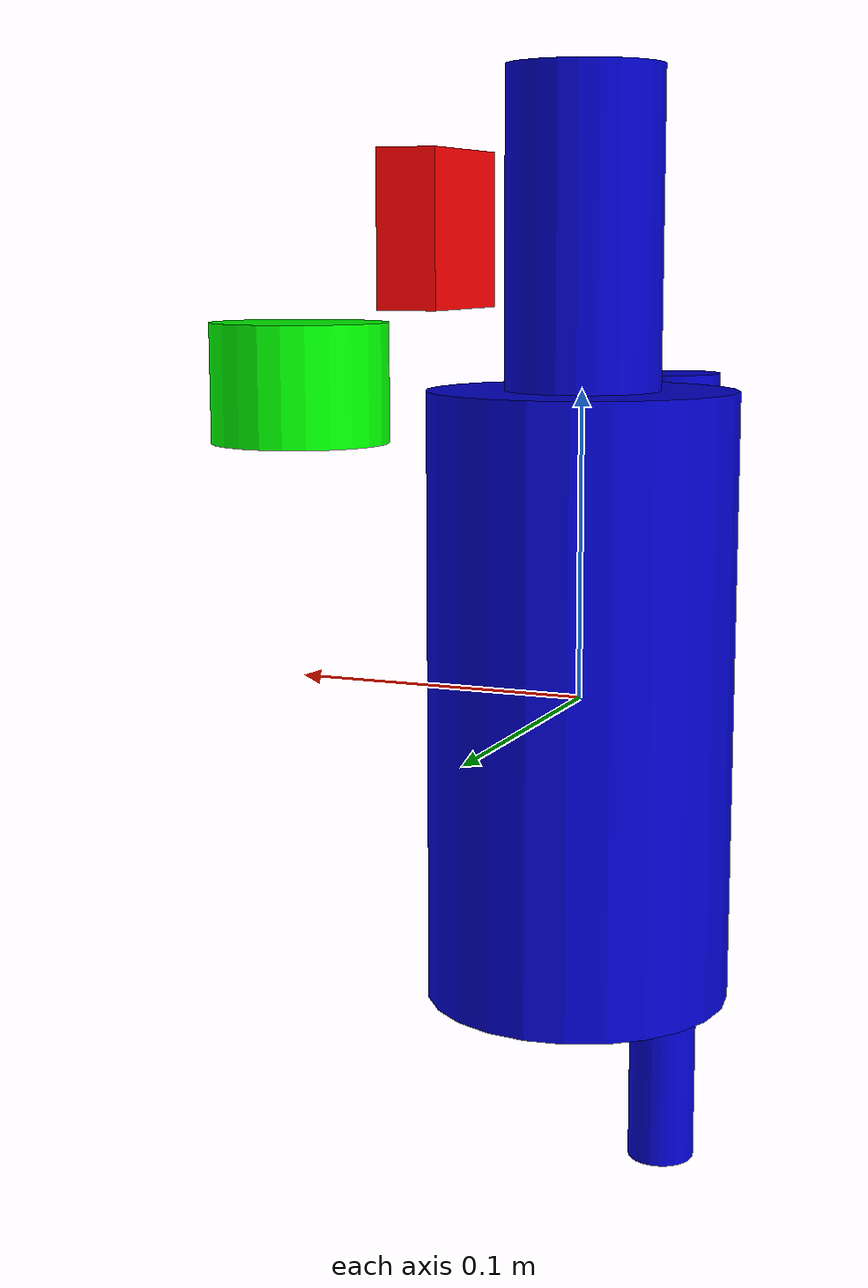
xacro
<?xml version="1.0"?>
<robot name="generic_humanoid" xmlns:xacro="http://www.ros.org/wiki/xacro">

  <!-- Define common properties/macros -->
  <xacro:property name="M_PI" value="3.1415926535897931" />
  <xacro:property name="body_mass" value="1.0" />
  <xacro:property name="body_len" value="0.2" />
  <xacro:property name="body_rad" value="0.05" />

  <!-- Macro for a generic cylinder link with inertia -->
  <xacro:macro name="cylinder_link" params="name mass length radius">
    <link name="${name}">
      <visual>
        <geometry>
          <cylinder length="${length}" radius="${radius}"/>
        </geometry>
        <material name="blue">
          <color rgba="0 0 0.8 1"/>
        </material>
      </visual>
      <collision>
        <geometry>
          <cylinder length="${length}" radius="${radius}"/>
        </geometry>
      </collision>
      <inertial>
        <mass value="${mass}"/>
        <inertia ixx="${(1/12)*mass*(3*radius*radius + length*length)}" ixy="0.0" ixz="0.0"
                 iyy="${(1/12)*mass*(3*radius*radius + length*length)}" iyz="0.0"
                 izz="${(1/2)*mass*radius*radius}"/>
      </inertial>
    </link>
  </xacro:macro>

  <!-- Base Link: Torso -->
  <xacro:cylinder_link name="torso_link" mass="${body_mass}" length="${body_len}" radius="${body_rad}"/>

  <!-- Head Joint and Link -->
  <joint name="head_joint" type="revolute">
    <parent link="torso_link"/>
    <child link="head_link"/>
    <origin xyz="0 0 ${body_len/2 + body_len/4}" rpy="0 0 0"/>
    <axis xyz="0 0 1"/>
    <limit lower="${-M_PI/4}" upper="${M_PI/4}" effort="10.0" velocity="1.0"/>
  </joint>
  <xacro:cylinder_link name="head_link" mass="${body_mass/4}" length="${body_len/2}" radius="${body_rad/2}"/>

  <!-- Right Shoulder Joint and Link -->
  <joint name="right_shoulder_joint" type="revolute">
    <parent link="torso_link"/>
    <child link="right_upper_arm_link"/>
    <origin xyz="0 ${-(body_rad + body_len/4)} 0" rpy="0 0 0"/>
    <axis xyz="1 0 0"/>
    <limit lower="${-M_PI/2}" upper="${M_PI/2}" effort="10.0" velocity="1.0"/>
  </joint>
  <xacro:cylinder_link name="right_upper_arm_link" mass="${body_mass/4}" length="${body_len}" radius="${body_rad/3}"/>

  <!-- Right Elbow Joint and Link -->
  <joint name="right_elbow_joint" type="revolute">
    <parent link="right_upper_arm_link"/>
    <child link="right_forearm_link"/>
    <origin xyz="0 0 ${-body_len/2}" rpy="0 0 0"/>
    <axis xyz="1 0 0"/>
    <limit lower="${-M_PI/2}" upper="${0}" effort="10.0" velocity="1.0"/>
  </joint>
  <xacro:cylinder_link name="right_forearm_link" mass="${body_mass/6}" length="${body_len}" radius="${body_rad/4}"/>

  <!-- Depth Camera Joint and Link -->
  <joint name="camera_joint" type="fixed">
    <parent link="head_link"/>
    <child link="camera_link"/>
    <origin xyz="0.05 0 0" rpy="0 0 0"/>
  </joint>
  <link name="camera_link">
    <visual>
      <geometry>
        <box size="0.02 0.05 0.05"/>
      </geometry>
      <material name="red">
        <color rgba="1 0 0 1"/>
      </material>
    </visual>
  </link>

  <!-- Gazebo Camera Sensor -->
  <gazebo reference="camera_link">
    <sensor name="depth_camera" type="depth">
      <update_rate>30.0</update_rate>
      <camera name="head_camera">
        <horizontal_fov>1.047</horizontal_fov>
        <image>
          <width>640</width>
          <height>480</height>
          <format>R8G8B8</format>
        </image>
        <clip>
          <near>0.1</near>
          <far>10</far>
        </clip>
        <noise>
          <type>gaussian</type>
          <mean>0.0</mean>
          <stddev>0.007</stddev>
        </noise>
      </camera>
      <plugin name="camera_controller" filename="libgazebo_ros_camera.so">
        <ros>
          <namespace>camera</namespace>
          <argument>--ros-args -r image:=image_raw -r depth_image:=depth/image_raw</argument>
          <argument>--ros-args -r camera_info:=camera_info -r depth/camera_info:=depth/camera_info</argument>
        </ros>
        <camera_name>depth_camera</camera_name>
        <frame_name>camera_depth_frame</frame_name>
        <hack_baseline>0.07</hack_baseline>
        <min_depth>0.1</min_depth>
        <max_depth>10.0</max_depth>
      </plugin>
    </sensor>
  </gazebo>

  <!-- LiDAR Joint and Link -->
  <joint name="laser_joint" type="fixed">
    <parent link="torso_link"/>
    <child link="laser_link"/>
    <origin xyz="0.1 0 0.1" rpy="0 0 0"/>
  </joint>
  <link name="laser_link">
    <visual>
      <geometry>
        <cylinder radius="0.03" length="0.04"/>
      </geometry>
      <material name="green">
        <color rgba="0 1 0 1"/>
      </material>
    </visual>
  </link>

  <!-- Gazebo LiDAR Sensor -->
  <gazebo reference="laser_link">
    <sensor name="lidar" type="ray">
      <pose>0 0 0 0 0 0</pose>
      <visualize>true</visualize>
      <update_rate>10.0</update_rate>
      <ray>
        <scan>
          <horizontal>
            <samples>640</samples>
            <resolution>1</resolution>
            <min_angle>-1.5708</min_angle>
            <max_angle>1.5708</max_angle>
          </horizontal>
        </scan>
        <range>
          <min>0.1</min>
          <max>10.0</max>
          <resolution>0.01</resolution>
        </range>
        <noise>
          <type>gaussian</type>
          <mean>0.0</mean>
          <stddev>0.01</stddev>
        </noise>
      </ray>
      <plugin name="laser_controller" filename="libgazebo_ros_ray_sensor.so">
        <ros>
          <argument>--ros-args -r scan:=scan</argument>
          <namespace>lidar</namespace>
        </ros>
        <output_type>sensor_msgs/LaserScan</output_type>
        <frame_name>laser_frame</frame_name>
      </plugin>
    </sensor>
  </gazebo>

  <!-- Gazebo IMU Sensor (reference torso_link) -->
  <gazebo reference="torso_link">
    <sensor name="imu_sensor" type="imu">
      <always_on>true</always_on>
      <update_rate>100.0</update_rate>
      <visualize>false</visualize>
      <topic>imu</topic>
      <plugin name="imu_plugin" filename="libgazebo_ros_imu_sensor.so">
        <ros>
          <namespace>/imu</namespace>
          <argument>--ros-args -r imu:=data</argument>
        </ros>
        <frame_name>torso_link</frame_name>
        <initial_orientation_as_reference>false</initial_orientation_as_reference>
        <gyroscope>
          <x>
            <noise type="gaussian">
              <mean>0.0</mean>
              <stddev>0.0002</stddev>
            </noise>
          </x>
          <y>
            <noise type="gaussian">
              <mean>0.0</mean>
              <stddev>0.0002</stddev>
            </noise>
          </y>
          <z>
            <noise type="gaussian">
              <mean>0.0</mean>
              <stddev>0.0002</stddev>
            </noise>
          </z>
        </gyroscope>
        <accelerometer>
          <x>
            <noise type="gaussian">
              <mean>0.0</mean>
              <stddev>0.017</stddev>
            </noise>
          </x>
          <y>
            <noise type="gaussian">
              <mean>0.0</mean>
              <stddev>0.017</stddev>
            </noise>
          </y>
          <z>
            <noise type="gaussian">
              <mean>0.0</mean>
              <stddev>0.017</stddev>
            </noise>
          </z>
        </accelerometer>
      </plugin>
    </sensor>
  </gazebo>

</robot>
